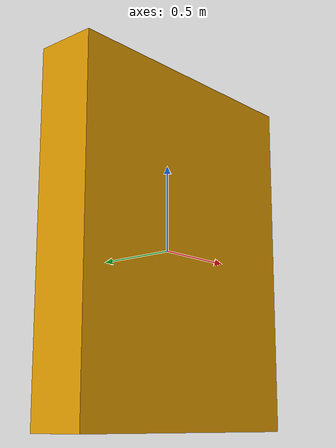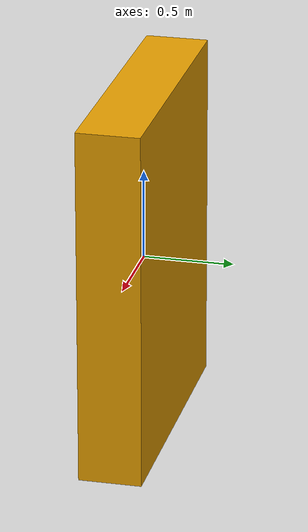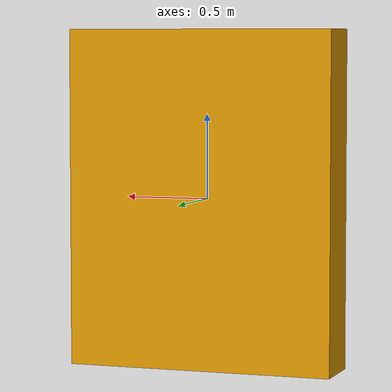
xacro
<?xml version="1.0" ?>
<robot name="vintage_shelf_5"
       xmlns:xacro="http://www.ros.org/wiki/xacro">

  <!-- Gazebo/Moveit model of a vintage bookshelf, brown wood, 160x160x35

       (C) 2021 fnh, hendrich@informatik.uni-hamburg.de
  -->

  <xacro:include filename="$(find tams_books_world)/urdf/book_cube.xacro" />

  <xacro:book_cube name="vintage_shelf_5" weight="100"
                     mesh="shelves/vintage-shelf-5.dae"
                     xsize="1.6" ysize="0.35" zsize="2.0"  />

</robot>

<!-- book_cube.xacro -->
<robot name="book_cube"
       xmlns:controller="http://playerstage.sourceforge.net/gazebo/xmlschema/#controller"
       xmlns:interface="http://playerstage.sourceforge.net/gazebo/xmlschema/#interface"
       xmlns:sensor="http://playerstage.sourceforge.net/gazebo/xmlschema/#sensor"
       xmlns:xacro="http://www.ros.org/wiki/xacro">
  <!--
       basic ROS xacro macro for a "book": a cube with textures.
       Origin and center of mass are at the center of the mesh.

       (C) 2019 fnh, hendrich@informatik.uni-hamburg.de
  -->

<xacro:macro name="book_cube" params="name weight mesh xsize ysize zsize">

  <!-- main body with Collada mesh for both visual and collision -->
  <link name="${name}_link">
    <inertial>
      <mass value="${weight}"/>
      <origin rpy="0 0 0" xyz="0 0 0"/>
      <inertia ixx="${weight/12*(ysize*ysize+zsize*zsize)}"
               iyy="${weight/12*(xsize*xsize+zsize*zsize)}"
               izz="${weight/12*(xsize*xsize+ysize*ysize)}"
               ixy="0" ixz="0" iyz="0" />
    </inertial>
    <collision>
      <origin rpy="0 0 0" xyz="0 0 0"/>
      <geometry>
        <box size="${xsize} ${ysize} ${zsize}" rpy="0 0 0" />
      </geometry>
    </collision>
    <visual>
      <origin rpy="0 0 0" xyz="0 0 0"/>
      <geometry>
        <mesh filename="package://tams_books_world/meshes/${mesh}" scale="${0.5*xsize} ${0.5*ysize} ${0.5*zsize}" />
      </geometry>
    </visual>
  </link>
  <gazebo reference="${name}_link">
    <!-- material/texture definition for Gazebo -->
    <turnGravityOff>false</turnGravityOff>
    <selfCollide>true</selfCollide>
    <mu1>1</mu1>
    <mu2>1</mu2>
    <kp>10000000.0</kp>
    <kd>10.0</kd>
  </gazebo>
</xacro:macro>

</robot>
